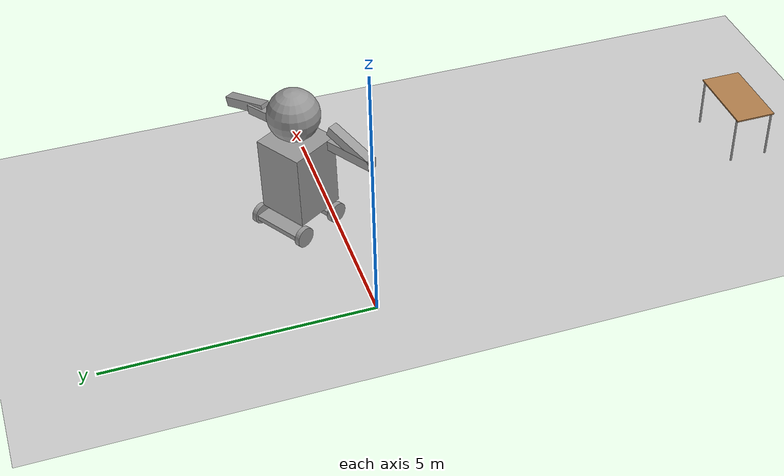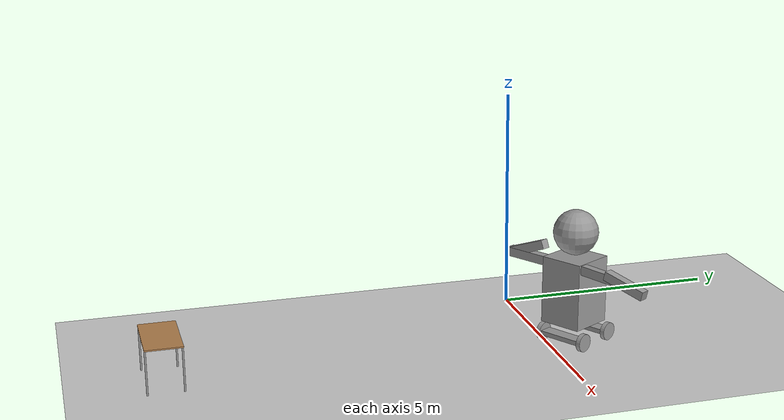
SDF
<sdf version="1.7">
 <world name="default">
  <model name="ground_plane">
   <static>1</static>
   <link name="link">
    <collision name="collision">
     <geometry><plane><normal>0 0 1</normal><size>100 100</size></plane></geometry>
     <surface>
      <contact><collide_bitmask>65535</collide_bitmask></contact>
      <friction><ode><mu>100</mu><mu2>50</mu2></ode></friction>
     </surface>
    </collision>
    <visual name="visual">
     <cast_shadows>0</cast_shadows>
     <geometry><plane><normal>0 0 1</normal><size>100 100</size></plane></geometry>
     <material>
      <script><uri>file://media/materials/scripts/gazebo.material</uri><name>Gazebo/Grey</name></script>
     </material>
    </visual>
   </link>
  </model>
  <model name="humanoid_robot">
   <link name="link_1">
    <inertial>
     <mass>2.10479</mass>
     <inertia>
      <ixx>0.952439</ixx>
      <ixy>0</ixy>
      <ixz>0</ixz>
      <iyy>0.952439</iyy>
      <iyz>0</iyz>
      <izz>0.350798</izz>
     </inertia>
    </inertial>
    <pose>-0.448722 -0.08924 -0.419518 0 -0 0</pose>
    <visual name="visual">
     <pose>0 0 0.2 0 -0 0</pose>
     <geometry><box><size>1 1 1.5</size></box></geometry>
     <material>
      <lighting>1</lighting>
      <script><uri>file://media/materials/scripts/gazebo.material</uri><name>Gazebo/Grey</name></script>
      <shader type="pixel"><normal_map>__default__</normal_map></shader>
      <ambient>0.3 0.3 0.3 1</ambient>
      <diffuse>0.7 0.7 0.7 1</diffuse>
      <specular>0.01 0.01 0.01 1</specular>
      <emissive>0 0 0 1</emissive>
     </material>
    </visual>
    <collision name="collision">
     <pose>0 0 0.2 0 -0 0</pose>
     <geometry><box><size>1 1 1.5</size></box></geometry>
     <surface>
      <friction>
       <ode><mu>1</mu><mu2>1</mu2><fdir1>0 0 0</fdir1><slip1>0</slip1><slip2>0</slip2></ode>
       <torsional>
        <coefficient>1</coefficient>
        <patch_radius>0</patch_radius>
        <surface_radius>0</surface_radius>
        <use_patch_radius>1</use_patch_radius>
        <ode><slip>0</slip></ode>
       </torsional>
      </friction>
      <bounce><restitution_coefficient>0</restitution_coefficient><threshold>1e+06</threshold></bounce>
      <contact>
       <collide_without_contact>0</collide_without_contact>
       <collide_without_contact_bitmask>1</collide_without_contact_bitmask>
       <collide_bitmask>1</collide_bitmask>
       <ode>
        <soft_cfm>0</soft_cfm>
        <soft_erp>0.2</soft_erp>
        <kp>1e+13</kp>
        <kd>1</kd>
        <max_vel>0.01</max_vel>
        <min_depth>0</min_depth>
       </ode>
       <bullet>
        <split_impulse>1</split_impulse>
        <split_impulse_penetration_threshold>-0.01</split_impulse_penetration_threshold>
        <soft_cfm>0</soft_cfm>
        <soft_erp>0.2</soft_erp>
        <kp>1e+13</kp>
        <kd>1</kd>
       </bullet>
      </contact>
     </surface>
    </collision>
   </link>
   <link name="link_4">
    <inertial>
     <mass>1</mass>
     <inertia><ixx>0.1</ixx><ixy>0</ixy><ixz>0</ixz><iyy>0.1</iyy><iyz>0</iyz><izz>0.1</izz></inertia>
    </inertial>
    <pose>-0.448722 -0.08924 1.08048 0 -0 0</pose>
    <visual name="visual">
     <geometry><sphere><radius>0.5</radius></sphere></geometry>
     <material>
      <lighting>1</lighting>
      <script><uri>file://media/materials/scripts/gazebo.material</uri><name>Gazebo/Grey</name></script>
      <shader type="pixel"><normal_map>__default__</normal_map></shader>
      <ambient>0.3 0.3 0.3 1</ambient>
      <diffuse>0.7 0.7 0.7 1</diffuse>
      <specular>0.01 0.01 0.01 1</specular>
      <emissive>0 0 0 1</emissive>
     </material>
    </visual>
    <collision name="collision">
     <geometry><sphere><radius>0.5</radius></sphere></geometry>
     <surface>
      <friction>
       <ode><mu>1</mu><mu2>1</mu2><fdir1>0 0 0</fdir1><slip1>0</slip1><slip2>0</slip2></ode>
       <torsional>
        <coefficient>1</coefficient>
        <patch_radius>0</patch_radius>
        <surface_radius>0</surface_radius>
        <use_patch_radius>1</use_patch_radius>
        <ode><slip>0</slip></ode>
       </torsional>
      </friction>
      <bounce><restitution_coefficient>0</restitution_coefficient><threshold>1e+06</threshold></bounce>
      <contact>
       <collide_without_contact>0</collide_without_contact>
       <collide_without_contact_bitmask>1</collide_without_contact_bitmask>
       <collide_bitmask>1</collide_bitmask>
       <ode>
        <soft_cfm>0</soft_cfm>
        <soft_erp>0.2</soft_erp>
        <kp>1e+13</kp>
        <kd>1</kd>
        <max_vel>0.01</max_vel>
        <min_depth>0</min_depth>
       </ode>
       <bullet>
        <split_impulse>1</split_impulse>
        <split_impulse_penetration_threshold>-0.01</split_impulse_penetration_threshold>
        <soft_cfm>0</soft_cfm>
        <soft_erp>0.2</soft_erp>
        <kp>1e+13</kp>
        <kd>1</kd>
       </bullet>
      </contact>
     </surface>
    </collision>
   </link>
   <link name="link_5">
    <inertial>
     <mass>1</mass>
     <inertia>
      <ixx>0.166667</ixx>
      <ixy>0</ixy>
      <ixz>0</ixz>
      <iyy>0.166667</iyy>
      <iyz>0</iyz>
      <izz>0.166667</izz>
     </inertia>
    </inertial>
    <pose>-0.088722 0.91076 0.390482 -0.06 -0.04 0</pose>
    <visual name="visual">
     <geometry><box><size>0.2 1 0.2</size></box></geometry>
     <material>
      <lighting>1</lighting>
      <script><uri>file://media/materials/scripts/gazebo.material</uri><name>Gazebo/Grey</name></script>
      <shader type="pixel"><normal_map>__default__</normal_map></shader>
      <ambient>0.3 0.3 0.3 1</ambient>
      <diffuse>0.7 0.7 0.7 1</diffuse>
      <specular>0.01 0.01 0.01 1</specular>
      <emissive>0 0 0 1</emissive>
     </material>
    </visual>
    <collision name="collision">
     <geometry><box><size>0.2 1 0.2</size></box></geometry>
     <surface>
      <friction>
       <ode><mu>1</mu><mu2>1</mu2><fdir1>0 0 0</fdir1><slip1>0</slip1><slip2>0</slip2></ode>
       <torsional>
        <coefficient>1</coefficient>
        <patch_radius>0</patch_radius>
        <surface_radius>0</surface_radius>
        <use_patch_radius>1</use_patch_radius>
        <ode><slip>0</slip></ode>
       </torsional>
      </friction>
      <bounce><restitution_coefficient>0</restitution_coefficient><threshold>1e+06</threshold></bounce>
      <contact>
       <collide_without_contact>0</collide_without_contact>
       <collide_without_contact_bitmask>1</collide_without_contact_bitmask>
       <collide_bitmask>1</collide_bitmask>
       <ode>
        <soft_cfm>0</soft_cfm>
        <soft_erp>0.2</soft_erp>
        <kp>1e+13</kp>
        <kd>1</kd>
        <max_vel>0.01</max_vel>
        <min_depth>0</min_depth>
       </ode>
       <bullet>
        <split_impulse>1</split_impulse>
        <split_impulse_penetration_threshold>-0.01</split_impulse_penetration_threshold>
        <soft_cfm>0</soft_cfm>
        <soft_erp>0.2</soft_erp>
        <kp>1e+13</kp>
        <kd>1</kd>
       </bullet>
      </contact>
     </surface>
    </collision>
   </link>
   <link name="link_5_clone">
    <inertial>
     <mass>1</mass>
     <inertia>
      <ixx>0.166667</ixx>
      <ixy>0</ixy>
      <ixz>0</ixz>
      <iyy>0.166667</iyy>
      <iyz>0</iyz>
      <izz>0.166667</izz>
     </inertia>
    </inertial>
    <pose>-0.048722 -1.08924 0.430482 0 -0 0</pose>
    <visual name="visual">
     <geometry><box><size>0.2 1 0.2</size></box></geometry>
     <material>
      <lighting>1</lighting>
      <script><uri>file://media/materials/scripts/gazebo.material</uri><name>Gazebo/Grey</name></script>
      <shader type="pixel"><normal_map>__default__</normal_map></shader>
      <ambient>0.3 0.3 0.3 1</ambient>
      <diffuse>0.7 0.7 0.7 1</diffuse>
      <specular>0.01 0.01 0.01 1</specular>
      <emissive>0 0 0 1</emissive>
     </material>
    </visual>
    <collision name="collision">
     <geometry><box><size>0.2 1 0.2</size></box></geometry>
     <surface>
      <friction>
       <ode><mu>1</mu><mu2>1</mu2><fdir1>0 0 0</fdir1><slip1>0</slip1><slip2>0</slip2></ode>
       <torsional>
        <coefficient>1</coefficient>
        <patch_radius>0</patch_radius>
        <surface_radius>0</surface_radius>
        <use_patch_radius>1</use_patch_radius>
        <ode><slip>0</slip></ode>
       </torsional>
      </friction>
      <bounce><restitution_coefficient>0</restitution_coefficient><threshold>1e+06</threshold></bounce>
      <contact>
       <collide_without_contact>0</collide_without_contact>
       <collide_without_contact_bitmask>1</collide_without_contact_bitmask>
       <collide_bitmask>1</collide_bitmask>
       <ode>
        <soft_cfm>0</soft_cfm>
        <soft_erp>0.2</soft_erp>
        <kp>1e+13</kp>
        <kd>1</kd>
        <max_vel>0.01</max_vel>
        <min_depth>0</min_depth>
       </ode>
       <bullet>
        <split_impulse>1</split_impulse>
        <split_impulse_penetration_threshold>-0.01</split_impulse_penetration_threshold>
        <soft_cfm>0</soft_cfm>
        <soft_erp>0.2</soft_erp>
        <kp>1e+13</kp>
        <kd>1</kd>
       </bullet>
      </contact>
     </surface>
    </collision>
   </link>
   <link name="link_5_clone_clone">
    <inertial>
     <mass>1</mass>
     <inertia>
      <ixx>0.166667</ixx>
      <ixy>0</ixy>
      <ixz>0</ixz>
      <iyy>0.166667</iyy>
      <iyz>0</iyz>
      <izz>0.166667</izz>
     </inertia>
    </inertial>
    <pose>-0.048722 -1.08689 0.604392 0.369688 -0 0</pose>
    <visual name="visual">
     <geometry><box><size>0.2 1 0.2</size></box></geometry>
     <material>
      <lighting>1</lighting>
      <script><uri>file://media/materials/scripts/gazebo.material</uri><name>Gazebo/Grey</name></script>
      <shader type="pixel"><normal_map>__default__</normal_map></shader>
      <ambient>0.3 0.3 0.3 1</ambient>
      <diffuse>0.7 0.7 0.7 1</diffuse>
      <specular>0.01 0.01 0.01 1</specular>
      <emissive>0 0 0 1</emissive>
     </material>
    </visual>
    <collision name="collision">
     <geometry><box><size>0.2 1 0.2</size></box></geometry>
     <surface>
      <friction>
       <ode><mu>1</mu><mu2>1</mu2><fdir1>0 0 0</fdir1><slip1>0</slip1><slip2>0</slip2></ode>
       <torsional>
        <coefficient>1</coefficient>
        <patch_radius>0</patch_radius>
        <surface_radius>0</surface_radius>
        <use_patch_radius>1</use_patch_radius>
        <ode><slip>0</slip></ode>
       </torsional>
      </friction>
      <bounce><restitution_coefficient>0</restitution_coefficient><threshold>1e+06</threshold></bounce>
      <contact>
       <collide_without_contact>0</collide_without_contact>
       <collide_without_contact_bitmask>1</collide_without_contact_bitmask>
       <collide_bitmask>1</collide_bitmask>
       <ode>
        <soft_cfm>0</soft_cfm>
        <soft_erp>0.2</soft_erp>
        <kp>1e+13</kp>
        <kd>1</kd>
        <max_vel>0.01</max_vel>
        <min_depth>0</min_depth>
       </ode>
       <bullet>
        <split_impulse>1</split_impulse>
        <split_impulse_penetration_threshold>-0.01</split_impulse_penetration_threshold>
        <soft_cfm>0</soft_cfm>
        <soft_erp>0.2</soft_erp>
        <kp>1e+13</kp>
        <kd>1</kd>
       </bullet>
      </contact>
     </surface>
    </collision>
   </link>
   <link name="link_5_clone_clone_0">
    <inertial>
     <mass>1</mass>
     <inertia>
      <ixx>0.166667</ixx>
      <ixy>0</ixy>
      <ixz>0</ixz>
      <iyy>0.166667</iyy>
      <iyz>0</iyz>
      <izz>0.166667</izz>
     </inertia>
    </inertial>
    <pose>-0.043643 1.55059 0.350025 -0.239275 0 0</pose>
    <visual name="visual">
     <geometry><box><size>0.2 1 0.2</size></box></geometry>
     <material>
      <lighting>1</lighting>
      <script><uri>file://media/materials/scripts/gazebo.material</uri><name>Gazebo/Grey</name></script>
      <shader type="pixel"><normal_map>__default__</normal_map></shader>
      <ambient>0.3 0.3 0.3 1</ambient>
      <diffuse>0.7 0.7 0.7 1</diffuse>
      <specular>0.01 0.01 0.01 1</specular>
      <emissive>0 0 0 1</emissive>
     </material>
    </visual>
    <collision name="collision">
     <geometry><box><size>0.2 1 0.2</size></box></geometry>
     <surface>
      <friction>
       <ode><mu>1</mu><mu2>1</mu2><fdir1>0 0 0</fdir1><slip1>0</slip1><slip2>0</slip2></ode>
       <torsional>
        <coefficient>1</coefficient>
        <patch_radius>0</patch_radius>
        <surface_radius>0</surface_radius>
        <use_patch_radius>1</use_patch_radius>
        <ode><slip>0</slip></ode>
       </torsional>
      </friction>
      <bounce><restitution_coefficient>0</restitution_coefficient><threshold>1e+06</threshold></bounce>
      <contact>
       <collide_without_contact>0</collide_without_contact>
       <collide_without_contact_bitmask>1</collide_without_contact_bitmask>
       <collide_bitmask>1</collide_bitmask>
       <ode>
        <soft_cfm>0</soft_cfm>
        <soft_erp>0.2</soft_erp>
        <kp>1e+13</kp>
        <kd>1</kd>
        <max_vel>0.01</max_vel>
        <min_depth>0</min_depth>
       </ode>
       <bullet>
        <split_impulse>1</split_impulse>
        <split_impulse_penetration_threshold>-0.01</split_impulse_penetration_threshold>
        <soft_cfm>0</soft_cfm>
        <soft_erp>0.2</soft_erp>
        <kp>1e+13</kp>
        <kd>1</kd>
       </bullet>
      </contact>
     </surface>
    </collision>
   </link>
   <model name="robot">
    <link name="link_1">
     <inertial>
      <mass>1</mass>
      <inertia>
       <ixx>0.166667</ixx>
       <ixy>0</ixy>
       <ixz>0</ixz>
       <iyy>0.166667</iyy>
       <iyz>0</iyz>
       <izz>0.166667</izz>
      </inertia>
     </inertial>
     <visual name="visual">
      <geometry><box><size>0.3 1 0.1</size></box></geometry>
      <material>
       <lighting>1</lighting>
       <script><uri>file://media/materials/scripts/gazebo.material</uri><name>Gazebo/Grey</name></script>
       <shader type="pixel"><normal_map>__default__</normal_map></shader>
       <ambient>0.3 0.3 0.3 1</ambient>
       <diffuse>0.7 0.7 0.7 1</diffuse>
       <specular>0.01 0.01 0.01 1</specular>
       <emissive>0 0 0 1</emissive>
      </material>
     </visual>
     <collision name="collision">
      <geometry><box><size>0.3 1 0.1</size></box></geometry>
      <surface>
       <friction>
        <ode><mu>1</mu><mu2>1</mu2><fdir1>0 0 0</fdir1><slip1>0</slip1><slip2>0</slip2></ode>
        <torsional>
         <coefficient>1</coefficient>
         <patch_radius>0</patch_radius>
         <surface_radius>0</surface_radius>
         <use_patch_radius>1</use_patch_radius>
         <ode><slip>0</slip></ode>
        </torsional>
       </friction>
       <bounce><restitution_coefficient>0</restitution_coefficient><threshold>1e+06</threshold></bounce>
       <contact>
        <collide_without_contact>0</collide_without_contact>
        <collide_without_contact_bitmask>1</collide_without_contact_bitmask>
        <collide_bitmask>1</collide_bitmask>
        <ode>
         <soft_cfm>0</soft_cfm>
         <soft_erp>0.2</soft_erp>
         <kp>1e+13</kp>
         <kd>1</kd>
         <max_vel>0.01</max_vel>
         <min_depth>0</min_depth>
        </ode>
        <bullet>
         <split_impulse>1</split_impulse>
         <split_impulse_penetration_threshold>-0.01</split_impulse_penetration_threshold>
         <soft_cfm>0</soft_cfm>
         <soft_erp>0.2</soft_erp>
         <kp>1e+13</kp>
         <kd>1</kd>
        </bullet>
       </contact>
      </surface>
     </collision>
    </link>
    <link name="link_3_clone">
     <inertial>
      <mass>1</mass>
      <inertia><ixx>0.145833</ixx><ixy>0</ixy><ixz>0</ixz><iyy>0.145833</iyy><iyz>0</iyz><izz>0.125</izz></inertia>
     </inertial>
     <pose>0 -0.550019 0 1.5707 -0 0</pose>
     <visual name="visual">
      <geometry><cylinder><radius>0.2</radius><length>0.1</length></cylinder></geometry>
      <material>
       <lighting>1</lighting>
       <script><uri>file://media/materials/scripts/gazebo.material</uri><name>Gazebo/Grey</name></script>
       <shader type="pixel"><normal_map>__default__</normal_map></shader>
       <ambient>0.3 0.3 0.3 1</ambient>
       <diffuse>0.7 0.7 0.7 1</diffuse>
       <specular>0.01 0.01 0.01 1</specular>
       <emissive>0 0 0 1</emissive>
      </material>
     </visual>
     <collision name="collision">
      <geometry><cylinder><radius>0.2</radius><length>0.1</length></cylinder></geometry>
      <surface>
       <friction>
        <ode><mu>1</mu><mu2>1</mu2><fdir1>0 0 0</fdir1><slip1>0</slip1><slip2>0</slip2></ode>
        <torsional>
         <coefficient>1</coefficient>
         <patch_radius>0</patch_radius>
         <surface_radius>0</surface_radius>
         <use_patch_radius>1</use_patch_radius>
         <ode><slip>0</slip></ode>
        </torsional>
       </friction>
       <bounce><restitution_coefficient>0</restitution_coefficient><threshold>1e+06</threshold></bounce>
       <contact>
        <collide_without_contact>0</collide_without_contact>
        <collide_without_contact_bitmask>1</collide_without_contact_bitmask>
        <collide_bitmask>1</collide_bitmask>
        <ode>
         <soft_cfm>0</soft_cfm>
         <soft_erp>0.2</soft_erp>
         <kp>1e+13</kp>
         <kd>1</kd>
         <max_vel>0.01</max_vel>
         <min_depth>0</min_depth>
        </ode>
        <bullet>
         <split_impulse>1</split_impulse>
         <split_impulse_penetration_threshold>-0.01</split_impulse_penetration_threshold>
         <soft_cfm>0</soft_cfm>
         <soft_erp>0.2</soft_erp>
         <kp>1e+13</kp>
         <kd>1</kd>
        </bullet>
       </contact>
      </surface>
     </collision>
    </link>
    <link name="link_3_clone_clone">
     <inertial>
      <mass>1</mass>
      <inertia><ixx>0.145833</ixx><ixy>0</ixy><ixz>0</ixz><iyy>0.145833</iyy><iyz>0</iyz><izz>0.125</izz></inertia>
     </inertial>
     <pose>0 0.550019 0 1.5707 -0 0</pose>
     <visual name="visual">
      <geometry><cylinder><radius>0.2</radius><length>0.1</length></cylinder></geometry>
      <material>
       <lighting>1</lighting>
       <script><uri>file://media/materials/scripts/gazebo.material</uri><name>Gazebo/Grey</name></script>
       <shader type="pixel"><normal_map>__default__</normal_map></shader>
       <ambient>0.3 0.3 0.3 1</ambient>
       <diffuse>0.7 0.7 0.7 1</diffuse>
       <specular>0.01 0.01 0.01 1</specular>
       <emissive>0 0 0 1</emissive>
      </material>
     </visual>
     <collision name="collision">
      <geometry><cylinder><radius>0.2</radius><length>0.1</length></cylinder></geometry>
      <surface>
       <friction>
        <ode><mu>1</mu><mu2>1</mu2><fdir1>0 0 0</fdir1><slip1>0</slip1><slip2>0</slip2></ode>
        <torsional>
         <coefficient>1</coefficient>
         <patch_radius>0</patch_radius>
         <surface_radius>0</surface_radius>
         <use_patch_radius>1</use_patch_radius>
         <ode><slip>0</slip></ode>
        </torsional>
       </friction>
       <bounce><restitution_coefficient>0</restitution_coefficient><threshold>1e+06</threshold></bounce>
       <contact>
        <collide_without_contact>0</collide_without_contact>
        <collide_without_contact_bitmask>1</collide_without_contact_bitmask>
        <collide_bitmask>1</collide_bitmask>
        <ode>
         <soft_cfm>0</soft_cfm>
         <soft_erp>0.2</soft_erp>
         <kp>1e+13</kp>
         <kd>1</kd>
         <max_vel>0.01</max_vel>
         <min_depth>0</min_depth>
        </ode>
        <bullet>
         <split_impulse>1</split_impulse>
         <split_impulse_penetration_threshold>-0.01</split_impulse_penetration_threshold>
         <soft_cfm>0</soft_cfm>
         <soft_erp>0.2</soft_erp>
         <kp>1e+13</kp>
         <kd>1</kd>
        </bullet>
       </contact>
      </surface>
     </collision>
    </link>
    <joint name="link_1_JOINT_1" type="revolute">
     <parent>link_1</parent>
     <child>link_3_clone</child>
     <axis>
      <xyz>0 0 1</xyz>
      <limit>
       <lower>-1.79769e+308</lower>
       <upper>1.79769e+308</upper>
       <effort>-1</effort>
       <velocity>-1</velocity>
      </limit>
      <dynamics>
       <spring_reference>0</spring_reference>
       <spring_stiffness>0</spring_stiffness>
       <damping>0</damping>
      </dynamics>
     </axis>
     <physics>
      <ode><limit><cfm>0</cfm><erp>0.2</erp></limit><suspension><cfm>0</cfm><erp>0.2</erp></suspension></ode>
     </physics>
    </joint>
    <joint name="link_1_JOINT_3" type="revolute">
     <parent>link_1</parent>
     <child>link_3_clone_clone</child>
     <axis>
      <xyz>0 0 1</xyz>
      <limit>
       <lower>-1.79769e+308</lower>
       <upper>1.79769e+308</upper>
       <effort>-1</effort>
       <velocity>-1</velocity>
      </limit>
      <dynamics>
       <spring_reference>0</spring_reference>
       <spring_stiffness>0</spring_stiffness>
       <damping>0</damping>
      </dynamics>
     </axis>
     <physics>
      <ode><limit><cfm>0</cfm><erp>0.2</erp></limit><suspension><cfm>0</cfm><erp>0.2</erp></suspension></ode>
     </physics>
    </joint>
    <static>0</static>
    <pose>-0.041176 -0.042224 -1.22566 0 -0 0</pose>
   </model>
   <model name="robot_0">
    <link name="link_1">
     <inertial>
      <mass>1</mass>
      <inertia>
       <ixx>0.166667</ixx>
       <ixy>0</ixy>
       <ixz>0</ixz>
       <iyy>0.166667</iyy>
       <iyz>0</iyz>
       <izz>0.166667</izz>
      </inertia>
     </inertial>
     <visual name="visual">
      <geometry><box><size>0.3 1 0.1</size></box></geometry>
      <material>
       <lighting>1</lighting>
       <script><uri>file://media/materials/scripts/gazebo.material</uri><name>Gazebo/Grey</name></script>
       <shader type="pixel"><normal_map>__default__</normal_map></shader>
       <ambient>0.3 0.3 0.3 1</ambient>
       <diffuse>0.7 0.7 0.7 1</diffuse>
       <specular>0.01 0.01 0.01 1</specular>
       <emissive>0 0 0 1</emissive>
      </material>
     </visual>
     <collision name="collision">
      <geometry><box><size>0.3 1 0.1</size></box></geometry>
      <surface>
       <friction>
        <ode><mu>1</mu><mu2>1</mu2><fdir1>0 0 0</fdir1><slip1>0</slip1><slip2>0</slip2></ode>
        <torsional>
         <coefficient>1</coefficient>
         <patch_radius>0</patch_radius>
         <surface_radius>0</surface_radius>
         <use_patch_radius>1</use_patch_radius>
         <ode><slip>0</slip></ode>
        </torsional>
       </friction>
       <bounce><restitution_coefficient>0</restitution_coefficient><threshold>1e+06</threshold></bounce>
       <contact>
        <collide_without_contact>0</collide_without_contact>
        <collide_without_contact_bitmask>1</collide_without_contact_bitmask>
        <collide_bitmask>1</collide_bitmask>
        <ode>
         <soft_cfm>0</soft_cfm>
         <soft_erp>0.2</soft_erp>
         <kp>1e+13</kp>
         <kd>1</kd>
         <max_vel>0.01</max_vel>
         <min_depth>0</min_depth>
        </ode>
        <bullet>
         <split_impulse>1</split_impulse>
         <split_impulse_penetration_threshold>-0.01</split_impulse_penetration_threshold>
         <soft_cfm>0</soft_cfm>
         <soft_erp>0.2</soft_erp>
         <kp>1e+13</kp>
         <kd>1</kd>
        </bullet>
       </contact>
      </surface>
     </collision>
    </link>
    <link name="link_3_clone">
     <inertial>
      <mass>1</mass>
      <inertia><ixx>0.145833</ixx><ixy>0</ixy><ixz>0</ixz><iyy>0.145833</iyy><iyz>0</iyz><izz>0.125</izz></inertia>
     </inertial>
     <pose>0 -0.550019 0 1.5707 -0 0</pose>
     <visual name="visual">
      <geometry><cylinder><radius>0.2</radius><length>0.1</length></cylinder></geometry>
      <material>
       <lighting>1</lighting>
       <script><uri>file://media/materials/scripts/gazebo.material</uri><name>Gazebo/Grey</name></script>
       <shader type="pixel"><normal_map>__default__</normal_map></shader>
       <ambient>0.3 0.3 0.3 1</ambient>
       <diffuse>0.7 0.7 0.7 1</diffuse>
       <specular>0.01 0.01 0.01 1</specular>
       <emissive>0 0 0 1</emissive>
      </material>
     </visual>
     <collision name="collision">
      <geometry><cylinder><radius>0.2</radius><length>0.1</length></cylinder></geometry>
      <surface>
       <friction>
        <ode><mu>1</mu><mu2>1</mu2><fdir1>0 0 0</fdir1><slip1>0</slip1><slip2>0</slip2></ode>
        <torsional>
         <coefficient>1</coefficient>
         <patch_radius>0</patch_radius>
         <surface_radius>0</surface_radius>
         <use_patch_radius>1</use_patch_radius>
         <ode><slip>0</slip></ode>
        </torsional>
       </friction>
       <bounce><restitution_coefficient>0</restitution_coefficient><threshold>1e+06</threshold></bounce>
       <contact>
        <collide_without_contact>0</collide_without_contact>
        <collide_without_contact_bitmask>1</collide_without_contact_bitmask>
        <collide_bitmask>1</collide_bitmask>
        <ode>
         <soft_cfm>0</soft_cfm>
         <soft_erp>0.2</soft_erp>
         <kp>1e+13</kp>
         <kd>1</kd>
         <max_vel>0.01</max_vel>
         <min_depth>0</min_depth>
        </ode>
        <bullet>
         <split_impulse>1</split_impulse>
         <split_impulse_penetration_threshold>-0.01</split_impulse_penetration_threshold>
         <soft_cfm>0</soft_cfm>
         <soft_erp>0.2</soft_erp>
         <kp>1e+13</kp>
         <kd>1</kd>
        </bullet>
       </contact>
      </surface>
     </collision>
    </link>
    <link name="link_3_clone_clone">
     <inertial>
      <mass>1</mass>
      <inertia><ixx>0.145833</ixx><ixy>0</ixy><ixz>0</ixz><iyy>0.145833</iyy><iyz>0</iyz><izz>0.125</izz></inertia>
     </inertial>
     <pose>0 0.550019 0 1.5707 -0 0</pose>
     <visual name="visual">
      <geometry><cylinder><radius>0.2</radius><length>0.1</length></cylinder></geometry>
      <material>
       <lighting>1</lighting>
       <script><uri>file://media/materials/scripts/gazebo.material</uri><name>Gazebo/Grey</name></script>
       <shader type="pixel"><normal_map>__default__</normal_map></shader>
       <ambient>0.3 0.3 0.3 1</ambient>
       <diffuse>0.7 0.7 0.7 1</diffuse>
       <specular>0.01 0.01 0.01 1</specular>
       <emissive>0 0 0 1</emissive>
      </material>
     </visual>
     <collision name="collision">
      <geometry><cylinder><radius>0.2</radius><length>0.1</length></cylinder></geometry>
      <surface>
       <friction>
        <ode><mu>1</mu><mu2>1</mu2><fdir1>0 0 0</fdir1><slip1>0</slip1><slip2>0</slip2></ode>
        <torsional>
         <coefficient>1</coefficient>
         <patch_radius>0</patch_radius>
         <surface_radius>0</surface_radius>
         <use_patch_radius>1</use_patch_radius>
         <ode><slip>0</slip></ode>
        </torsional>
       </friction>
       <bounce><restitution_coefficient>0</restitution_coefficient><threshold>1e+06</threshold></bounce>
       <contact>
        <collide_without_contact>0</collide_without_contact>
        <collide_without_contact_bitmask>1</collide_without_contact_bitmask>
        <collide_bitmask>1</collide_bitmask>
        <ode>
         <soft_cfm>0</soft_cfm>
         <soft_erp>0.2</soft_erp>
         <kp>1e+13</kp>
         <kd>1</kd>
         <max_vel>0.01</max_vel>
         <min_depth>0</min_depth>
        </ode>
        <bullet>
         <split_impulse>1</split_impulse>
         <split_impulse_penetration_threshold>-0.01</split_impulse_penetration_threshold>
         <soft_cfm>0</soft_cfm>
         <soft_erp>0.2</soft_erp>
         <kp>1e+13</kp>
         <kd>1</kd>
        </bullet>
       </contact>
      </surface>
     </collision>
    </link>
    <joint name="link_1_JOINT_1" type="revolute">
     <parent>link_1</parent>
     <child>link_3_clone</child>
     <axis>
      <xyz>0 0 1</xyz>
      <limit>
       <lower>-1.79769e+308</lower>
       <upper>1.79769e+308</upper>
       <effort>-1</effort>
       <velocity>-1</velocity>
      </limit>
      <dynamics>
       <spring_reference>0</spring_reference>
       <spring_stiffness>0</spring_stiffness>
       <damping>0</damping>
      </dynamics>
     </axis>
     <physics>
      <ode><limit><cfm>0</cfm><erp>0.2</erp></limit><suspension><cfm>0</cfm><erp>0.2</erp></suspension></ode>
     </physics>
    </joint>
    <joint name="link_1_JOINT_3" type="revolute">
     <parent>link_1</parent>
     <child>link_3_clone_clone</child>
     <axis>
      <xyz>0 0 1</xyz>
      <limit>
       <lower>-1.79769e+308</lower>
       <upper>1.79769e+308</upper>
       <effort>-1</effort>
       <velocity>-1</velocity>
      </limit>
      <dynamics>
       <spring_reference>0</spring_reference>
       <spring_stiffness>0</spring_stiffness>
       <damping>0</damping>
      </dynamics>
     </axis>
     <physics>
      <ode><limit><cfm>0</cfm><erp>0.2</erp></limit><suspension><cfm>0</cfm><erp>0.2</erp></suspension></ode>
     </physics>
    </joint>
    <static>0</static>
    <pose>-0.953654 -0.064519 -1.21068 0 -0 0</pose>
   </model>
   <joint name="link_1_JOINT_0" type="ball">
    <parent>link_1</parent>
    <child>link_4</child>
    <physics>
     <ode><limit><cfm>0</cfm><erp>0.2</erp></limit><suspension><cfm>0</cfm><erp>0.2</erp></suspension></ode>
    </physics>
   </joint>
   <joint name="link_1_JOINT_3" type="ball">
    <parent>link_1</parent>
    <child>link_5</child>
    <physics>
     <ode><limit><cfm>0</cfm><erp>0.2</erp></limit><suspension><cfm>0</cfm><erp>0.2</erp></suspension></ode>
    </physics>
   </joint>
   <joint name="link_1_JOINT_4" type="ball">
    <parent>link_1</parent>
    <child>link_5_clone</child>
    <physics>
     <ode><limit><cfm>0</cfm><erp>0.2</erp></limit><suspension><cfm>0</cfm><erp>0.2</erp></suspension></ode>
    </physics>
   </joint>
   <joint name="link_5_JOINT_10" type="revolute">
    <parent>link_5</parent>
    <child>link_5_clone_clone_0</child>
    <axis>
     <xyz>1 0 0</xyz>
     <limit>
      <lower>-1.79769e+308</lower>
      <upper>1.79769e+308</upper>
      <effort>-1</effort>
      <velocity>-1</velocity>
     </limit>
     <dynamics>
      <spring_reference>0</spring_reference>
      <spring_stiffness>0</spring_stiffness>
      <damping>0</damping>
     </dynamics>
    </axis>
    <physics>
     <ode><limit><cfm>0</cfm><erp>0.2</erp></limit><suspension><cfm>0</cfm><erp>0.2</erp></suspension></ode>
    </physics>
   </joint>
   <joint name="link_5_clone_JOINT_5" type="revolute">
    <parent>link_5_clone</parent>
    <child>link_5_clone_clone</child>
    <pose>0 0 0 -0.01 0 0</pose>
    <axis>
     <xyz>1 0 0</xyz>
     <limit>
      <lower>-1.79769e+308</lower>
      <upper>1.79769e+308</upper>
      <effort>-1</effort>
      <velocity>-1</velocity>
     </limit>
     <dynamics>
      <spring_reference>0</spring_reference>
      <spring_stiffness>0</spring_stiffness>
      <damping>0</damping>
     </dynamics>
    </axis>
    <physics>
     <ode><limit><cfm>0</cfm><erp>0.2</erp></limit><suspension><cfm>0</cfm><erp>0.2</erp></suspension></ode>
    </physics>
   </joint>
   <joint name="link_1_JOINT_1" type="fixed">
    <parent>robot::link_1</parent>
    <child>link_1</child>
    <physics>
     <ode><limit><cfm>0</cfm><erp>0.2</erp></limit><suspension><cfm>0</cfm><erp>0.2</erp></suspension></ode>
    </physics>
   </joint>
   <joint name="link_1_JOINT_2" type="fixed">
    <parent>robot_0::link_1</parent>
    <child>link_1</child>
    <physics>
     <ode><limit><cfm>0</cfm><erp>0.2</erp></limit><suspension><cfm>0</cfm><erp>0.2</erp></suspension></ode>
    </physics>
   </joint>
   <static>0</static>
   <pose>3.09578 0.286004 1.42617 -2e-06 -0.016409 -1.01995</pose>
   <scale>200 200 200</scale>
  </model>
  <model name="table">
   <static>1</static>
   <link name="link">
    <collision name="surface">
     <pose>0 0 1 0 -0 0</pose>
     <geometry><box><size>1.5 0.8 0.03</size></box></geometry>
     <surface><friction><ode><mu>0.6</mu><mu2>0.6</mu2></ode></friction></surface>
    </collision>
    <visual name="visual1">
     <pose>0 0 1 0 -0 0</pose>
     <geometry><box><size>1.5 0.8 0.03</size></box></geometry>
     <material>
      <script><uri>file://media/materials/scripts/gazebo.material</uri><name>Gazebo/Wood</name></script>
     </material>
    </visual>
    <collision name="front_left_leg">
     <pose>0.68 0.38 0.5 0 -0 0</pose>
     <geometry><cylinder><radius>0.02</radius><length>1</length></cylinder></geometry>
    </collision>
    <visual name="front_left_leg">
     <pose>0.68 0.38 0.5 0 -0 0</pose>
     <geometry><cylinder><radius>0.02</radius><length>1</length></cylinder></geometry>
     <material>
      <script><uri>file://media/materials/scripts/gazebo.material</uri><name>Gazebo/Grey</name></script>
     </material>
    </visual>
    <collision name="front_right_leg">
     <pose>0.68 -0.38 0.5 0 -0 0</pose>
     <geometry><cylinder><radius>0.02</radius><length>1</length></cylinder></geometry>
    </collision>
    <visual name="front_right_leg">
     <pose>0.68 -0.38 0.5 0 -0 0</pose>
     <geometry><cylinder><radius>0.02</radius><length>1</length></cylinder></geometry>
     <material>
      <script><uri>file://media/materials/scripts/gazebo.material</uri><name>Gazebo/Grey</name></script>
     </material>
    </visual>
    <collision name="back_right_leg">
     <pose>-0.68 -0.38 0.5 0 -0 0</pose>
     <geometry><cylinder><radius>0.02</radius><length>1</length></cylinder></geometry>
    </collision>
    <visual name="back_right_leg">
     <pose>-0.68 -0.38 0.5 0 -0 0</pose>
     <geometry><cylinder><radius>0.02</radius><length>1</length></cylinder></geometry>
     <material>
      <script><uri>file://media/materials/scripts/gazebo.material</uri><name>Gazebo/Grey</name></script>
     </material>
    </visual>
    <collision name="back_left_leg">
     <pose>-0.68 0.38 0.5 0 -0 0</pose>
     <geometry><cylinder><radius>0.02</radius><length>1</length></cylinder></geometry>
    </collision>
    <visual name="back_left_leg">
     <pose>-0.68 0.38 0.5 0 -0 0</pose>
     <geometry><cylinder><radius>0.02</radius><length>1</length></cylinder></geometry>
     <material>
      <script><uri>file://media/materials/scripts/gazebo.material</uri><name>Gazebo/Grey</name></script>
     </material>
    </visual>
   </link>
   <pose>2.45628 -8.36588 0 0 -0 0</pose>
  </model>
 </world>
</sdf>
